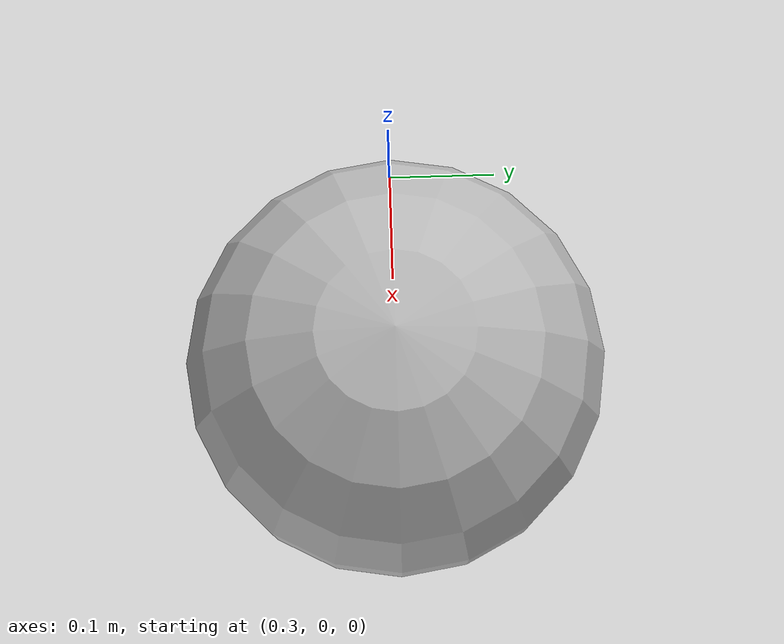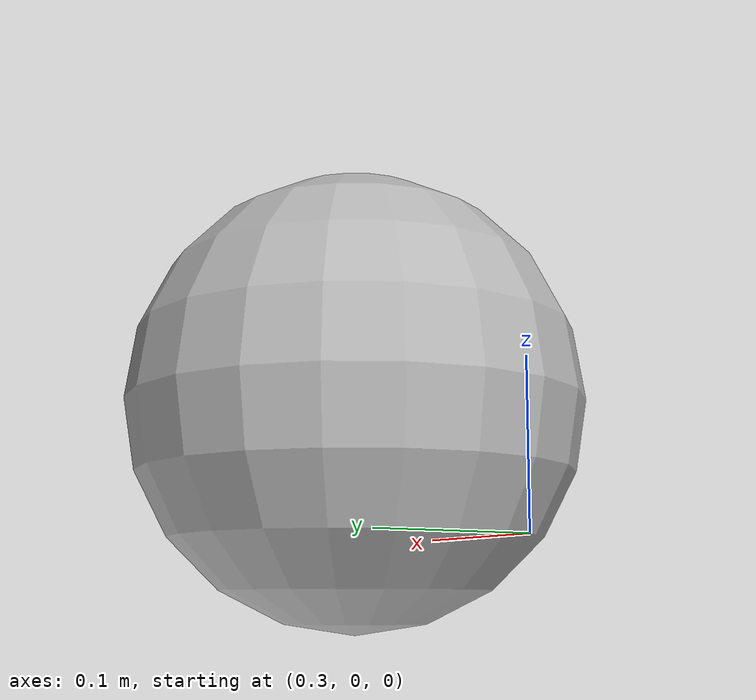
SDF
<?xml version="1.0" ?>
<sdf version="1.4">

  <model name="ball">
    <pose>0.5 0 0.1 0 0 0</pose>
    <link name="link">
      <inertial>
        <mass>1.0</mass>
        <inertia>
          <ixx>0.1</ixx>
          <iyy>0.1</iyy>
          <izz>0.1</izz>
          <ixy>0.0</ixy>
          <ixz>0.0</ixz>
          <iyz>0.0</iyz>
        </inertia>
      </inertial>
      <collision name="collision">
        <geometry>
          <sphere>
            <radius>0.16</radius>
          </sphere>
        </geometry>
        <surface>
          <friction>
            <ode>
              <mu>100</mu>
              <mu2>50</mu2>
            </ode>
          </friction>
          <bounce/>
          <contact>
            <ode/>
          </contact>
        </surface>
      </collision>
      <visual name="visual">
        <geometry>
          <sphere>
            <radius>0.16</radius>
          </sphere>
        </geometry>
      </visual>
    </link>
  </model>

</sdf>
